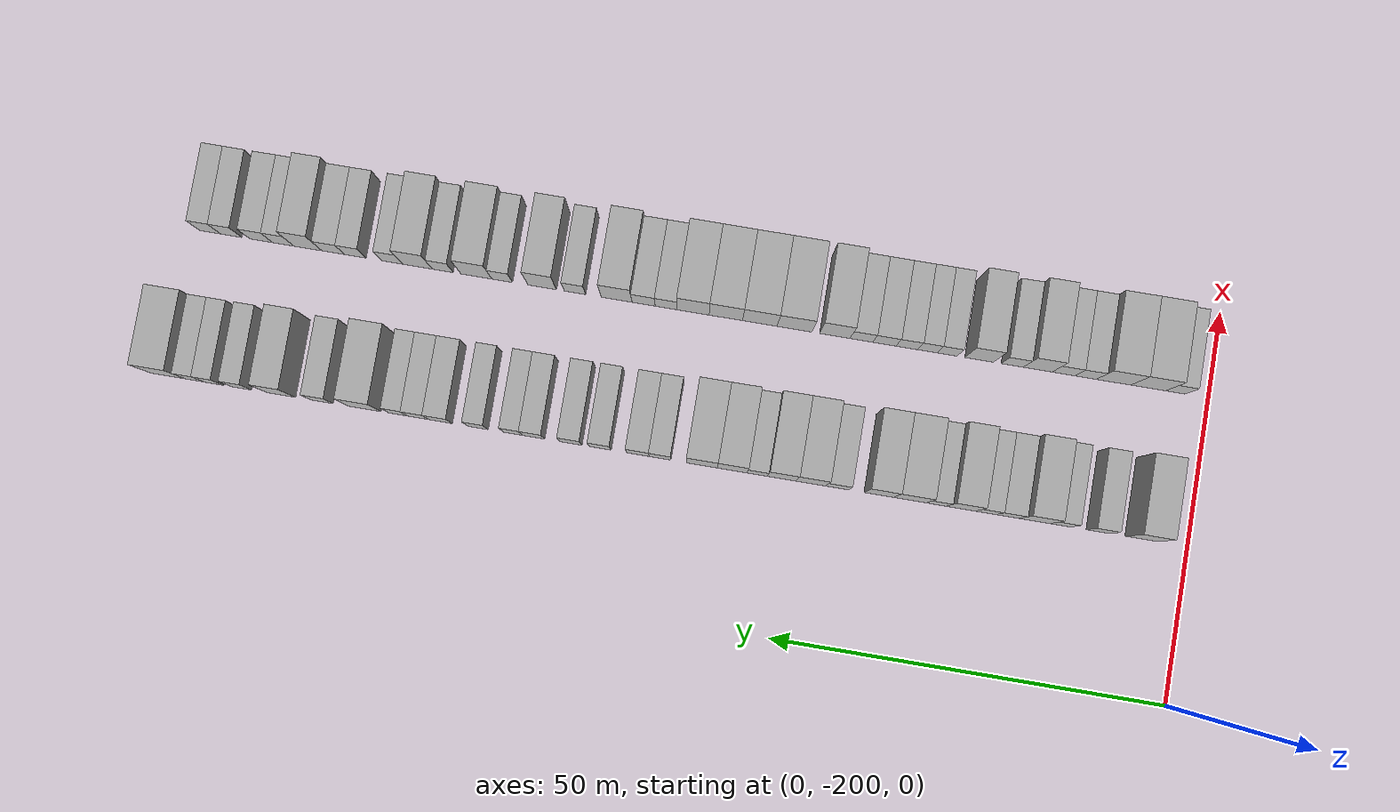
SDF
<sdf version="1.6">
 <world name="default">
  <model name="building_1">
   <static>1</static>
   <pose>25.0000 -194.0165 0 0.000000 0.000000 0.000000</pose>
   <link name="link">
    <pose>0 0 4.50 0 0 0</pose>
    <collision name="collision"><geometry><box><size>10.0000 3.9670 9.0000</size></box></geometry></collision>
    <visual name="visual">
     <cast_shadows>0</cast_shadows>
     <geometry><box><size>10.0000 3.9670 9.0000</size></box></geometry>
     <material>
      <script>
       <uri>model://HANNAS_wall/materials/scripts</uri>
       <uri>model://HANNAS_wall/materials/textures</uri>
       <name>vrc/HANNAS_wall</name>
      </script>
     </material>
    </visual>
   </link>
  </model>
  <model name="building_2">
   <static>1</static>
   <pose>25.0000 -188.5718 0 0.000000 0.000000 0.000000</pose>
   <link name="link">
    <pose>0 0 3.00 0 0 0</pose>
    <collision name="collision"><geometry><box><size>10.0000 2.9225 6.0000</size></box></geometry></collision>
    <visual name="visual">
     <cast_shadows>0</cast_shadows>
     <geometry><box><size>10.0000 2.9225 6.0000</size></box></geometry>
     <material>
      <script>
       <uri>model://HANNAS_wall/materials/scripts</uri>
       <uri>model://HANNAS_wall/materials/textures</uri>
       <name>vrc/HANNAS_wall</name>
      </script>
     </material>
    </visual>
   </link>
  </model>
  <model name="building_3">
   <static>1</static>
   <pose>25.0000 -183.7584 0 0.000000 0.000000 0.000000</pose>
   <link name="link">
    <pose>0 0 3.00 0 0 0</pose>
    <collision name="collision"><geometry><box><size>10.0000 2.7043 6.0000</size></box></geometry></collision>
    <visual name="visual">
     <cast_shadows>0</cast_shadows>
     <geometry><box><size>10.0000 2.7043 6.0000</size></box></geometry>
     <material>
      <script>
       <uri>model://HANNAS_wall/materials/scripts</uri>
       <uri>model://HANNAS_wall/materials/textures</uri>
       <name>vrc/HANNAS_wall</name>
      </script>
     </material>
    </visual>
   </link>
  </model>
  <model name="building_4">
   <static>1</static>
   <pose>25.0000 -180.4802 0 0.000000 0.000000 0.000000</pose>
   <link name="link">
    <pose>0 0 4.50 0 0 0</pose>
    <collision name="collision"><geometry><box><size>10.0000 3.8520 9.0000</size></box></geometry></collision>
    <visual name="visual">
     <cast_shadows>0</cast_shadows>
     <geometry><box><size>10.0000 3.8520 9.0000</size></box></geometry>
     <material>
      <script>
       <uri>model://HANNAS_wall/materials/scripts</uri>
       <uri>model://HANNAS_wall/materials/textures</uri>
       <name>vrc/HANNAS_wall</name>
      </script>
     </material>
    </visual>
   </link>
  </model>
  <model name="building_5">
   <static>1</static>
   <pose>25.0000 -177.1076 0 0.000000 0.000000 0.000000</pose>
   <link name="link">
    <pose>0 0 3.00 0 0 0</pose>
    <collision name="collision"><geometry><box><size>10.0000 2.8932 6.0000</size></box></geometry></collision>
    <visual name="visual">
     <cast_shadows>0</cast_shadows>
     <geometry><box><size>10.0000 2.8932 6.0000</size></box></geometry>
     <material>
      <script>
       <uri>model://HANNAS_wall/materials/scripts</uri>
       <uri>model://HANNAS_wall/materials/textures</uri>
       <name>vrc/HANNAS_wall</name>
      </script>
     </material>
    </visual>
   </link>
  </model>
  <model name="building_6">
   <static>1</static>
   <pose>25.0000 -174.3342 0 0.000000 0.000000 0.000000</pose>
   <link name="link">
    <pose>0 0 3.00 0 0 0</pose>
    <collision name="collision"><geometry><box><size>10.0000 2.6536 6.0000</size></box></geometry></collision>
    <visual name="visual">
     <cast_shadows>0</cast_shadows>
     <geometry><box><size>10.0000 2.6536 6.0000</size></box></geometry>
     <material>
      <script>
       <uri>model://HANNAS_wall/materials/scripts</uri>
       <uri>model://HANNAS_wall/materials/textures</uri>
       <name>vrc/HANNAS_wall</name>
      </script>
     </material>
    </visual>
   </link>
  </model>
  <model name="building_7">
   <static>1</static>
   <pose>25.0000 -171.1680 0 0.000000 0.000000 0.000000</pose>
   <link name="link">
    <pose>0 0 4.50 0 0 0</pose>
    <collision name="collision"><geometry><box><size>10.0000 3.6788 9.0000</size></box></geometry></collision>
    <visual name="visual">
     <cast_shadows>0</cast_shadows>
     <geometry><box><size>10.0000 3.6788 9.0000</size></box></geometry>
     <material>
      <script>
       <uri>model://HANNAS_wall/materials/scripts</uri>
       <uri>model://HANNAS_wall/materials/textures</uri>
       <name>vrc/HANNAS_wall</name>
      </script>
     </material>
    </visual>
   </link>
  </model>
  <model name="building_8">
   <static>1</static>
   <pose>25.0000 -168.0481 0 0.000000 0.000000 0.000000</pose>
   <link name="link">
    <pose>0 0 3.00 0 0 0</pose>
    <collision name="collision"><geometry><box><size>10.0000 2.5609 6.0000</size></box></geometry></collision>
    <visual name="visual">
     <cast_shadows>0</cast_shadows>
     <geometry><box><size>10.0000 2.5609 6.0000</size></box></geometry>
     <material>
      <script>
       <uri>model://HANNAS_wall/materials/scripts</uri>
       <uri>model://HANNAS_wall/materials/textures</uri>
       <name>vrc/HANNAS_wall</name>
      </script>
     </material>
    </visual>
   </link>
  </model>
  <model name="building_9">
   <static>1</static>
   <pose>25.0000 -164.6973 0 0.000000 0.000000 0.000000</pose>
   <link name="link">
    <pose>0 0 4.50 0 0 0</pose>
    <collision name="collision"><geometry><box><size>10.0000 4.1407 9.0000</size></box></geometry></collision>
    <visual name="visual">
     <cast_shadows>0</cast_shadows>
     <geometry><box><size>10.0000 4.1407 9.0000</size></box></geometry>
     <material>
      <script>
       <uri>model://HANNAS_wall/materials/scripts</uri>
       <uri>model://HANNAS_wall/materials/textures</uri>
       <name>vrc/HANNAS_wall</name>
      </script>
     </material>
    </visual>
   </link>
  </model>
  <model name="building_10">
   <static>1</static>
   <pose>25.0000 -160.7534 0 0.000000 0.000000 0.000000</pose>
   <link name="link">
    <pose>0 0 4.50 0 0 0</pose>
    <collision name="collision"><geometry><box><size>10.0000 3.7471 9.0000</size></box></geometry></collision>
    <visual name="visual">
     <cast_shadows>0</cast_shadows>
     <geometry><box><size>10.0000 3.7471 9.0000</size></box></geometry>
     <material>
      <script>
       <uri>model://HANNAS_wall/materials/scripts</uri>
       <uri>model://HANNAS_wall/materials/textures</uri>
       <name>vrc/HANNAS_wall</name>
      </script>
     </material>
    </visual>
   </link>
  </model>
  <model name="building_11">
   <static>1</static>
   <pose>25.0000 -155.4140 0 0.000000 0.000000 0.000000</pose>
   <link name="link">
    <pose>0 0 3.00 0 0 0</pose>
    <collision name="collision"><geometry><box><size>10.0000 2.9317 6.0000</size></box></geometry></collision>
    <visual name="visual">
     <cast_shadows>0</cast_shadows>
     <geometry><box><size>10.0000 2.9317 6.0000</size></box></geometry>
     <material>
      <script>
       <uri>model://HANNAS_wall/materials/scripts</uri>
       <uri>model://HANNAS_wall/materials/textures</uri>
       <name>vrc/HANNAS_wall</name>
      </script>
     </material>
    </visual>
   </link>
  </model>
  <model name="building_12">
   <static>1</static>
   <pose>25.0000 -152.0537 0 0.000000 0.000000 0.000000</pose>
   <link name="link">
    <pose>0 0 4.50 0 0 0</pose>
    <collision name="collision"><geometry><box><size>10.0000 3.7888 9.0000</size></box></geometry></collision>
    <visual name="visual">
     <cast_shadows>0</cast_shadows>
     <geometry><box><size>10.0000 3.7888 9.0000</size></box></geometry>
     <material>
      <script>
       <uri>model://HANNAS_wall/materials/scripts</uri>
       <uri>model://HANNAS_wall/materials/textures</uri>
       <name>vrc/HANNAS_wall</name>
      </script>
     </material>
    </visual>
   </link>
  </model>
  <model name="building_13">
   <static>1</static>
   <pose>25.0000 -148.3409 0 0.000000 0.000000 0.000000</pose>
   <link name="link">
    <pose>0 0 4.50 0 0 0</pose>
    <collision name="collision"><geometry><box><size>10.0000 3.6369 9.0000</size></box></geometry></collision>
    <visual name="visual">
     <cast_shadows>0</cast_shadows>
     <geometry><box><size>10.0000 3.6369 9.0000</size></box></geometry>
     <material>
      <script>
       <uri>model://HANNAS_wall/materials/scripts</uri>
       <uri>model://HANNAS_wall/materials/textures</uri>
       <name>vrc/HANNAS_wall</name>
      </script>
     </material>
    </visual>
   </link>
  </model>
  <model name="building_14">
   <static>1</static>
   <pose>25.0000 -145.2305 0 0.000000 0.000000 0.000000</pose>
   <link name="link">
    <pose>0 0 3.00 0 0 0</pose>
    <collision name="collision"><geometry><box><size>10.0000 2.5838 6.0000</size></box></geometry></collision>
    <visual name="visual">
     <cast_shadows>0</cast_shadows>
     <geometry><box><size>10.0000 2.5838 6.0000</size></box></geometry>
     <material>
      <script>
       <uri>model://HANNAS_wall/materials/scripts</uri>
       <uri>model://HANNAS_wall/materials/textures</uri>
       <name>vrc/HANNAS_wall</name>
      </script>
     </material>
    </visual>
   </link>
  </model>
  <model name="building_15">
   <static>1</static>
   <pose>25.0000 -142.0524 0 0.000000 0.000000 0.000000</pose>
   <link name="link">
    <pose>0 0 4.50 0 0 0</pose>
    <collision name="collision"><geometry><box><size>10.0000 3.7724 9.0000</size></box></geometry></collision>
    <visual name="visual">
     <cast_shadows>0</cast_shadows>
     <geometry><box><size>10.0000 3.7724 9.0000</size></box></geometry>
     <material>
      <script>
       <uri>model://HANNAS_wall/materials/scripts</uri>
       <uri>model://HANNAS_wall/materials/textures</uri>
       <name>vrc/HANNAS_wall</name>
      </script>
     </material>
    </visual>
   </link>
  </model>
  <model name="building_16">
   <static>1</static>
   <pose>25.0000 -138.2094 0 0.000000 0.000000 0.000000</pose>
   <link name="link">
    <pose>0 0 4.50 0 0 0</pose>
    <collision name="collision"><geometry><box><size>10.0000 3.9137 9.0000</size></box></geometry></collision>
    <visual name="visual">
     <cast_shadows>0</cast_shadows>
     <geometry><box><size>10.0000 3.9137 9.0000</size></box></geometry>
     <material>
      <script>
       <uri>model://HANNAS_wall/materials/scripts</uri>
       <uri>model://HANNAS_wall/materials/textures</uri>
       <name>vrc/HANNAS_wall</name>
      </script>
     </material>
    </visual>
   </link>
  </model>
  <model name="building_17">
   <static>1</static>
   <pose>25.0000 -132.8847 0 0.000000 0.000000 0.000000</pose>
   <link name="link">
    <pose>0 0 3.00 0 0 0</pose>
    <collision name="collision"><geometry><box><size>10.0000 2.7356 6.0000</size></box></geometry></collision>
    <visual name="visual">
     <cast_shadows>0</cast_shadows>
     <geometry><box><size>10.0000 2.7356 6.0000</size></box></geometry>
     <material>
      <script>
       <uri>model://HANNAS_wall/materials/scripts</uri>
       <uri>model://HANNAS_wall/materials/textures</uri>
       <name>vrc/HANNAS_wall</name>
      </script>
     </material>
    </visual>
   </link>
  </model>
  <model name="building_18">
   <static>1</static>
   <pose>25.0000 -130.0702 0 0.000000 0.000000 0.000000</pose>
   <link name="link">
    <pose>0 0 3.00 0 0 0</pose>
    <collision name="collision"><geometry><box><size>10.0000 2.8935 6.0000</size></box></geometry></collision>
    <visual name="visual">
     <cast_shadows>0</cast_shadows>
     <geometry><box><size>10.0000 2.8935 6.0000</size></box></geometry>
     <material>
      <script>
       <uri>model://HANNAS_wall/materials/scripts</uri>
       <uri>model://HANNAS_wall/materials/textures</uri>
       <name>vrc/HANNAS_wall</name>
      </script>
     </material>
    </visual>
   </link>
  </model>
  <model name="building_19">
   <static>1</static>
   <pose>25.0000 -125.2565 0 0.000000 0.000000 0.000000</pose>
   <link name="link">
    <pose>0 0 3.00 0 0 0</pose>
    <collision name="collision"><geometry><box><size>10.0000 2.7338 6.0000</size></box></geometry></collision>
    <visual name="visual">
     <cast_shadows>0</cast_shadows>
     <geometry><box><size>10.0000 2.7338 6.0000</size></box></geometry>
     <material>
      <script>
       <uri>model://HANNAS_wall/materials/scripts</uri>
       <uri>model://HANNAS_wall/materials/textures</uri>
       <name>vrc/HANNAS_wall</name>
      </script>
     </material>
    </visual>
   </link>
  </model>
  <model name="building_20">
   <static>1</static>
   <pose>25.0000 -121.5013 0 0.000000 0.000000 0.000000</pose>
   <link name="link">
    <pose>0 0 3.00 0 0 0</pose>
    <collision name="collision"><geometry><box><size>10.0000 2.7766 6.0000</size></box></geometry></collision>
    <visual name="visual">
     <cast_shadows>0</cast_shadows>
     <geometry><box><size>10.0000 2.7766 6.0000</size></box></geometry>
     <material>
      <script>
       <uri>model://HANNAS_wall/materials/scripts</uri>
       <uri>model://HANNAS_wall/materials/textures</uri>
       <name>vrc/HANNAS_wall</name>
      </script>
     </material>
    </visual>
   </link>
  </model>
  <model name="building_21">
   <static>1</static>
   <pose>25.0000 -116.7300 0 0.000000 0.000000 0.000000</pose>
   <link name="link">
    <pose>0 0 3.00 0 0 0</pose>
    <collision name="collision"><geometry><box><size>10.0000 2.7659 6.0000</size></box></geometry></collision>
    <visual name="visual">
     <cast_shadows>0</cast_shadows>
     <geometry><box><size>10.0000 2.7659 6.0000</size></box></geometry>
     <material>
      <script>
       <uri>model://HANNAS_wall/materials/scripts</uri>
       <uri>model://HANNAS_wall/materials/textures</uri>
       <name>vrc/HANNAS_wall</name>
      </script>
     </material>
    </visual>
   </link>
  </model>
  <model name="building_22">
   <static>1</static>
   <pose>25.0000 -114.1130 0 0.000000 0.000000 0.000000</pose>
   <link name="link">
    <pose>0 0 3.00 0 0 0</pose>
    <collision name="collision"><geometry><box><size>10.0000 2.4680 6.0000</size></box></geometry></collision>
    <visual name="visual">
     <cast_shadows>0</cast_shadows>
     <geometry><box><size>10.0000 2.4680 6.0000</size></box></geometry>
     <material>
      <script>
       <uri>model://HANNAS_wall/materials/scripts</uri>
       <uri>model://HANNAS_wall/materials/textures</uri>
       <name>vrc/HANNAS_wall</name>
      </script>
     </material>
    </visual>
   </link>
  </model>
  <model name="building_23">
   <static>1</static>
   <pose>25.0000 -109.5772 0 0.000000 0.000000 0.000000</pose>
   <link name="link">
    <pose>0 0 3.00 0 0 0</pose>
    <collision name="collision"><geometry><box><size>10.0000 2.6037 6.0000</size></box></geometry></collision>
    <visual name="visual">
     <cast_shadows>0</cast_shadows>
     <geometry><box><size>10.0000 2.6037 6.0000</size></box></geometry>
     <material>
      <script>
       <uri>model://HANNAS_wall/materials/scripts</uri>
       <uri>model://HANNAS_wall/materials/textures</uri>
       <name>vrc/HANNAS_wall</name>
      </script>
     </material>
    </visual>
   </link>
  </model>
  <model name="building_24">
   <static>1</static>
   <pose>25.0000 -104.7983 0 0.000000 0.000000 0.000000</pose>
   <link name="link">
    <pose>0 0 3.00 0 0 0</pose>
    <collision name="collision"><geometry><box><size>10.0000 2.9540 6.0000</size></box></geometry></collision>
    <visual name="visual">
     <cast_shadows>0</cast_shadows>
     <geometry><box><size>10.0000 2.9540 6.0000</size></box></geometry>
     <material>
      <script>
       <uri>model://HANNAS_wall/materials/scripts</uri>
       <uri>model://HANNAS_wall/materials/textures</uri>
       <name>vrc/HANNAS_wall</name>
      </script>
     </material>
    </visual>
   </link>
  </model>
  <model name="building_25">
   <static>1</static>
   <pose>25.0000 -101.9632 0 0.000000 0.000000 0.000000</pose>
   <link name="link">
    <pose>0 0 3.00 0 0 0</pose>
    <collision name="collision"><geometry><box><size>10.0000 2.7163 6.0000</size></box></geometry></collision>
    <visual name="visual">
     <cast_shadows>0</cast_shadows>
     <geometry><box><size>10.0000 2.7163 6.0000</size></box></geometry>
     <material>
      <script>
       <uri>model://HANNAS_wall/materials/scripts</uri>
       <uri>model://HANNAS_wall/materials/textures</uri>
       <name>vrc/HANNAS_wall</name>
      </script>
     </material>
    </visual>
   </link>
  </model>
  <model name="building_26">
   <static>1</static>
   <pose>25.0000 -99.3712 0 0.000000 0.000000 0.000000</pose>
   <link name="link">
    <pose>0 0 3.00 0 0 0</pose>
    <collision name="collision"><geometry><box><size>10.0000 2.4677 6.0000</size></box></geometry></collision>
    <visual name="visual">
     <cast_shadows>0</cast_shadows>
     <geometry><box><size>10.0000 2.4677 6.0000</size></box></geometry>
     <material>
      <script>
       <uri>model://HANNAS_wall/materials/scripts</uri>
       <uri>model://HANNAS_wall/materials/textures</uri>
       <name>vrc/HANNAS_wall</name>
      </script>
     </material>
    </visual>
   </link>
  </model>
  <model name="building_27">
   <static>1</static>
   <pose>25.0000 -95.0721 0 0.000000 0.000000 0.000000</pose>
   <link name="link">
    <pose>0 0 4.50 0 0 0</pose>
    <collision name="collision"><geometry><box><size>10.0000 4.1305 9.0000</size></box></geometry></collision>
    <visual name="visual">
     <cast_shadows>0</cast_shadows>
     <geometry><box><size>10.0000 4.1305 9.0000</size></box></geometry>
     <material>
      <script>
       <uri>model://HANNAS_wall/materials/scripts</uri>
       <uri>model://HANNAS_wall/materials/textures</uri>
       <name>vrc/HANNAS_wall</name>
      </script>
     </material>
    </visual>
   </link>
  </model>
  <model name="building_28">
   <static>1</static>
   <pose>25.0000 -89.5736 0 0.000000 0.000000 0.000000</pose>
   <link name="link">
    <pose>0 0 3.00 0 0 0</pose>
    <collision name="collision"><geometry><box><size>10.0000 2.8665 6.0000</size></box></geometry></collision>
    <visual name="visual">
     <cast_shadows>0</cast_shadows>
     <geometry><box><size>10.0000 2.8665 6.0000</size></box></geometry>
     <material>
      <script>
       <uri>model://HANNAS_wall/materials/scripts</uri>
       <uri>model://HANNAS_wall/materials/textures</uri>
       <name>vrc/HANNAS_wall</name>
      </script>
     </material>
    </visual>
   </link>
  </model>
  <model name="building_29">
   <static>1</static>
   <pose>25.0000 -84.3223 0 0.000000 0.000000 0.000000</pose>
   <link name="link">
    <pose>0 0 4.50 0 0 0</pose>
    <collision name="collision"><geometry><box><size>10.0000 3.6360 9.0000</size></box></geometry></collision>
    <visual name="visual">
     <cast_shadows>0</cast_shadows>
     <geometry><box><size>10.0000 3.6360 9.0000</size></box></geometry>
     <material>
      <script>
       <uri>model://HANNAS_wall/materials/scripts</uri>
       <uri>model://HANNAS_wall/materials/textures</uri>
       <name>vrc/HANNAS_wall</name>
      </script>
     </material>
    </visual>
   </link>
  </model>
  <model name="building_30">
   <static>1</static>
   <pose>25.0000 -79.1929 0 0.000000 0.000000 0.000000</pose>
   <link name="link">
    <pose>0 0 3.00 0 0 0</pose>
    <collision name="collision"><geometry><box><size>10.0000 2.6228 6.0000</size></box></geometry></collision>
    <visual name="visual">
     <cast_shadows>0</cast_shadows>
     <geometry><box><size>10.0000 2.6228 6.0000</size></box></geometry>
     <material>
      <script>
       <uri>model://HANNAS_wall/materials/scripts</uri>
       <uri>model://HANNAS_wall/materials/textures</uri>
       <name>vrc/HANNAS_wall</name>
      </script>
     </material>
    </visual>
   </link>
  </model>
  <model name="building_31">
   <static>1</static>
   <pose>25.0000 -75.6652 0 0.000000 0.000000 0.000000</pose>
   <link name="link">
    <pose>0 0 3.00 0 0 0</pose>
    <collision name="collision"><geometry><box><size>10.0000 2.4328 6.0000</size></box></geometry></collision>
    <visual name="visual">
     <cast_shadows>0</cast_shadows>
     <geometry><box><size>10.0000 2.4328 6.0000</size></box></geometry>
     <material>
      <script>
       <uri>model://HANNAS_wall/materials/scripts</uri>
       <uri>model://HANNAS_wall/materials/textures</uri>
       <name>vrc/HANNAS_wall</name>
      </script>
     </material>
    </visual>
   </link>
  </model>
  <model name="building_32">
   <static>1</static>
   <pose>25.0000 -73.2357 0 0.000000 0.000000 0.000000</pose>
   <link name="link">
    <pose>0 0 3.00 0 0 0</pose>
    <collision name="collision"><geometry><box><size>10.0000 2.4261 6.0000</size></box></geometry></collision>
    <visual name="visual">
     <cast_shadows>0</cast_shadows>
     <geometry><box><size>10.0000 2.4261 6.0000</size></box></geometry>
     <material>
      <script>
       <uri>model://HANNAS_wall/materials/scripts</uri>
       <uri>model://HANNAS_wall/materials/textures</uri>
       <name>vrc/HANNAS_wall</name>
      </script>
     </material>
    </visual>
   </link>
  </model>
  <model name="building_33">
   <static>1</static>
   <pose>25.0000 -69.8034 0 0.000000 0.000000 0.000000</pose>
   <link name="link">
    <pose>0 0 4.50 0 0 0</pose>
    <collision name="collision"><geometry><box><size>10.0000 4.4385 9.0000</size></box></geometry></collision>
    <visual name="visual">
     <cast_shadows>0</cast_shadows>
     <geometry><box><size>10.0000 4.4385 9.0000</size></box></geometry>
     <material>
      <script>
       <uri>model://HANNAS_wall/materials/scripts</uri>
       <uri>model://HANNAS_wall/materials/textures</uri>
       <name>vrc/HANNAS_wall</name>
      </script>
     </material>
    </visual>
   </link>
  </model>
  <model name="building_99">
   <static>1</static>
   <pose>44.0000 -195.7363 0 0.000000 0.000000 0.000000</pose>
   <link name="link">
    <pose>0 0 3.00 0 0 0</pose>
    <collision name="collision"><geometry><box><size>10.0000 2.5275 6.0000</size></box></geometry></collision>
    <visual name="visual">
     <cast_shadows>0</cast_shadows>
     <geometry><box><size>10.0000 2.5275 6.0000</size></box></geometry>
     <material>
      <script>
       <uri>model://HANNAS_wall/materials/scripts</uri>
       <uri>model://HANNAS_wall/materials/textures</uri>
       <name>vrc/HANNAS_wall</name>
      </script>
     </material>
    </visual>
   </link>
  </model>
  <model name="building_100">
   <static>1</static>
   <pose>44.0000 -192.2659 0 0.000000 0.000000 0.000000</pose>
   <link name="link">
    <pose>0 0 4.50 0 0 0</pose>
    <collision name="collision"><geometry><box><size>10.0000 4.4133 9.0000</size></box></geometry></collision>
    <visual name="visual">
     <cast_shadows>0</cast_shadows>
     <geometry><box><size>10.0000 4.4133 9.0000</size></box></geometry>
     <material>
      <script>
       <uri>model://HANNAS_wall/materials/scripts</uri>
       <uri>model://HANNAS_wall/materials/textures</uri>
       <name>vrc/HANNAS_wall</name>
      </script>
     </material>
    </visual>
   </link>
  </model>
  <model name="building_101">
   <static>1</static>
   <pose>44.0000 -187.8545 0 0.000000 0.000000 0.000000</pose>
   <link name="link">
    <pose>0 0 4.50 0 0 0</pose>
    <collision name="collision"><geometry><box><size>10.0000 4.4096 9.0000</size></box></geometry></collision>
    <visual name="visual">
     <cast_shadows>0</cast_shadows>
     <geometry><box><size>10.0000 4.4096 9.0000</size></box></geometry>
     <material>
      <script>
       <uri>model://HANNAS_wall/materials/scripts</uri>
       <uri>model://HANNAS_wall/materials/textures</uri>
       <name>vrc/HANNAS_wall</name>
      </script>
     </material>
    </visual>
   </link>
  </model>
  <model name="building_102">
   <static>1</static>
   <pose>44.0000 -184.2665 0 0.000000 0.000000 0.000000</pose>
   <link name="link">
    <pose>0 0 3.00 0 0 0</pose>
    <collision name="collision"><geometry><box><size>10.0000 2.7664 6.0000</size></box></geometry></collision>
    <visual name="visual">
     <cast_shadows>0</cast_shadows>
     <geometry><box><size>10.0000 2.7664 6.0000</size></box></geometry>
     <material>
      <script>
       <uri>model://HANNAS_wall/materials/scripts</uri>
       <uri>model://HANNAS_wall/materials/textures</uri>
       <name>vrc/HANNAS_wall</name>
      </script>
     </material>
    </visual>
   </link>
  </model>
  <model name="building_103">
   <static>1</static>
   <pose>44.0000 -181.4394 0 0.000000 0.000000 0.000000</pose>
   <link name="link">
    <pose>0 0 3.00 0 0 0</pose>
    <collision name="collision"><geometry><box><size>10.0000 2.8879 6.0000</size></box></geometry></collision>
    <visual name="visual">
     <cast_shadows>0</cast_shadows>
     <geometry><box><size>10.0000 2.8879 6.0000</size></box></geometry>
     <material>
      <script>
       <uri>model://HANNAS_wall/materials/scripts</uri>
       <uri>model://HANNAS_wall/materials/textures</uri>
       <name>vrc/HANNAS_wall</name>
      </script>
     </material>
    </visual>
   </link>
  </model>
  <model name="building_104">
   <static>1</static>
   <pose>44.0000 -178.1531 0 0.000000 0.000000 0.000000</pose>
   <link name="link">
    <pose>0 0 4.50 0 0 0</pose>
    <collision name="collision"><geometry><box><size>10.0000 3.6848 9.0000</size></box></geometry></collision>
    <visual name="visual">
     <cast_shadows>0</cast_shadows>
     <geometry><box><size>10.0000 3.6848 9.0000</size></box></geometry>
     <material>
      <script>
       <uri>model://HANNAS_wall/materials/scripts</uri>
       <uri>model://HANNAS_wall/materials/textures</uri>
       <name>vrc/HANNAS_wall</name>
      </script>
     </material>
    </visual>
   </link>
  </model>
  <model name="building_105">
   <static>1</static>
   <pose>44.0000 -174.8920 0 0.000000 0.000000 0.000000</pose>
   <link name="link">
    <pose>0 0 3.00 0 0 0</pose>
    <collision name="collision"><geometry><box><size>10.0000 2.8373 6.0000</size></box></geometry></collision>
    <visual name="visual">
     <cast_shadows>0</cast_shadows>
     <geometry><box><size>10.0000 2.8373 6.0000</size></box></geometry>
     <material>
      <script>
       <uri>model://HANNAS_wall/materials/scripts</uri>
       <uri>model://HANNAS_wall/materials/textures</uri>
       <name>vrc/HANNAS_wall</name>
      </script>
     </material>
    </visual>
   </link>
  </model>
  <model name="building_106">
   <static>1</static>
   <pose>44.0000 -170.6427 0 0.000000 0.000000 0.000000</pose>
   <link name="link">
    <pose>0 0 4.50 0 0 0</pose>
    <collision name="collision"><geometry><box><size>10.0000 3.6615 9.0000</size></box></geometry></collision>
    <visual name="visual">
     <cast_shadows>0</cast_shadows>
     <geometry><box><size>10.0000 3.6615 9.0000</size></box></geometry>
     <material>
      <script>
       <uri>model://HANNAS_wall/materials/scripts</uri>
       <uri>model://HANNAS_wall/materials/textures</uri>
       <name>vrc/HANNAS_wall</name>
      </script>
     </material>
    </visual>
   </link>
  </model>
  <model name="building_107">
   <static>1</static>
   <pose>44.0000 -166.5300 0 0.000000 0.000000 0.000000</pose>
   <link name="link">
    <pose>0 0 3.00 0 0 0</pose>
    <collision name="collision"><geometry><box><size>10.0000 2.5639 6.0000</size></box></geometry></collision>
    <visual name="visual">
     <cast_shadows>0</cast_shadows>
     <geometry><box><size>10.0000 2.5639 6.0000</size></box></geometry>
     <material>
      <script>
       <uri>model://HANNAS_wall/materials/scripts</uri>
       <uri>model://HANNAS_wall/materials/textures</uri>
       <name>vrc/HANNAS_wall</name>
      </script>
     </material>
    </visual>
   </link>
  </model>
  <model name="building_108">
   <static>1</static>
   <pose>44.0000 -163.9997 0 0.000000 0.000000 0.000000</pose>
   <link name="link">
    <pose>0 0 3.00 0 0 0</pose>
    <collision name="collision"><geometry><box><size>10.0000 2.4967 6.0000</size></box></geometry></collision>
    <visual name="visual">
     <cast_shadows>0</cast_shadows>
     <geometry><box><size>10.0000 2.4967 6.0000</size></box></geometry>
     <material>
      <script>
       <uri>model://HANNAS_wall/materials/scripts</uri>
       <uri>model://HANNAS_wall/materials/textures</uri>
       <name>vrc/HANNAS_wall</name>
      </script>
     </material>
    </visual>
   </link>
  </model>
  <model name="building_109">
   <static>1</static>
   <pose>44.0000 -161.3671 0 0.000000 0.000000 0.000000</pose>
   <link name="link">
    <pose>0 0 3.00 0 0 0</pose>
    <collision name="collision"><geometry><box><size>10.0000 2.7685 6.0000</size></box></geometry></collision>
    <visual name="visual">
     <cast_shadows>0</cast_shadows>
     <geometry><box><size>10.0000 2.7685 6.0000</size></box></geometry>
     <material>
      <script>
       <uri>model://HANNAS_wall/materials/scripts</uri>
       <uri>model://HANNAS_wall/materials/textures</uri>
       <name>vrc/HANNAS_wall</name>
      </script>
     </material>
    </visual>
   </link>
  </model>
  <model name="building_110">
   <static>1</static>
   <pose>44.0000 -158.4844 0 0.000000 0.000000 0.000000</pose>
   <link name="link">
    <pose>0 0 3.00 0 0 0</pose>
    <collision name="collision"><geometry><box><size>10.0000 2.9970 6.0000</size></box></geometry></collision>
    <visual name="visual">
     <cast_shadows>0</cast_shadows>
     <geometry><box><size>10.0000 2.9970 6.0000</size></box></geometry>
     <material>
      <script>
       <uri>model://HANNAS_wall/materials/scripts</uri>
       <uri>model://HANNAS_wall/materials/textures</uri>
       <name>vrc/HANNAS_wall</name>
      </script>
     </material>
    </visual>
   </link>
  </model>
  <model name="building_111">
   <static>1</static>
   <pose>44.0000 -155.5258 0 0.000000 0.000000 0.000000</pose>
   <link name="link">
    <pose>0 0 3.00 0 0 0</pose>
    <collision name="collision"><geometry><box><size>10.0000 2.9201 6.0000</size></box></geometry></collision>
    <visual name="visual">
     <cast_shadows>0</cast_shadows>
     <geometry><box><size>10.0000 2.9201 6.0000</size></box></geometry>
     <material>
      <script>
       <uri>model://HANNAS_wall/materials/scripts</uri>
       <uri>model://HANNAS_wall/materials/textures</uri>
       <name>vrc/HANNAS_wall</name>
      </script>
     </material>
    </visual>
   </link>
  </model>
  <model name="building_112">
   <static>1</static>
   <pose>44.0000 -152.1196 0 0.000000 0.000000 0.000000</pose>
   <link name="link">
    <pose>0 0 4.50 0 0 0</pose>
    <collision name="collision"><geometry><box><size>10.0000 3.8923 9.0000</size></box></geometry></collision>
    <visual name="visual">
     <cast_shadows>0</cast_shadows>
     <geometry><box><size>10.0000 3.8923 9.0000</size></box></geometry>
     <material>
      <script>
       <uri>model://HANNAS_wall/materials/scripts</uri>
       <uri>model://HANNAS_wall/materials/textures</uri>
       <name>vrc/HANNAS_wall</name>
      </script>
     </material>
    </visual>
   </link>
  </model>
  <model name="building_113">
   <static>1</static>
   <pose>44.0000 -146.9387 0 0.000000 0.000000 0.000000</pose>
   <link name="link">
    <pose>0 0 4.50 0 0 0</pose>
    <collision name="collision"><geometry><box><size>10.0000 4.4695 9.0000</size></box></geometry></collision>
    <visual name="visual">
     <cast_shadows>0</cast_shadows>
     <geometry><box><size>10.0000 4.4695 9.0000</size></box></geometry>
     <material>
      <script>
       <uri>model://HANNAS_wall/materials/scripts</uri>
       <uri>model://HANNAS_wall/materials/textures</uri>
       <name>vrc/HANNAS_wall</name>
      </script>
     </material>
    </visual>
   </link>
  </model>
  <model name="building_114">
   <static>1</static>
   <pose>44.0000 -142.4842 0 0.000000 0.000000 0.000000</pose>
   <link name="link">
    <pose>0 0 4.50 0 0 0</pose>
    <collision name="collision"><geometry><box><size>10.0000 4.4395 9.0000</size></box></geometry></collision>
    <visual name="visual">
     <cast_shadows>0</cast_shadows>
     <geometry><box><size>10.0000 4.4395 9.0000</size></box></geometry>
     <material>
      <script>
       <uri>model://HANNAS_wall/materials/scripts</uri>
       <uri>model://HANNAS_wall/materials/textures</uri>
       <name>vrc/HANNAS_wall</name>
      </script>
     </material>
    </visual>
   </link>
  </model>
  <model name="building_115">
   <static>1</static>
   <pose>44.0000 -138.1164 0 0.000000 0.000000 0.000000</pose>
   <link name="link">
    <pose>0 0 4.50 0 0 0</pose>
    <collision name="collision"><geometry><box><size>10.0000 4.2960 9.0000</size></box></geometry></collision>
    <visual name="visual">
     <cast_shadows>0</cast_shadows>
     <geometry><box><size>10.0000 4.2960 9.0000</size></box></geometry>
     <material>
      <script>
       <uri>model://HANNAS_wall/materials/scripts</uri>
       <uri>model://HANNAS_wall/materials/textures</uri>
       <name>vrc/HANNAS_wall</name>
      </script>
     </material>
    </visual>
   </link>
  </model>
  <model name="building_116">
   <static>1</static>
   <pose>44.0000 -133.9071 0 0.000000 0.000000 0.000000</pose>
   <link name="link">
    <pose>0 0 4.50 0 0 0</pose>
    <collision name="collision"><geometry><box><size>10.0000 4.1226 9.0000</size></box></geometry></collision>
    <visual name="visual">
     <cast_shadows>0</cast_shadows>
     <geometry><box><size>10.0000 4.1226 9.0000</size></box></geometry>
     <material>
      <script>
       <uri>model://HANNAS_wall/materials/scripts</uri>
       <uri>model://HANNAS_wall/materials/textures</uri>
       <name>vrc/HANNAS_wall</name>
      </script>
     </material>
    </visual>
   </link>
  </model>
  <model name="building_117">
   <static>1</static>
   <pose>44.0000 -130.4311 0 0.000000 0.000000 0.000000</pose>
   <link name="link">
    <pose>0 0 3.00 0 0 0</pose>
    <collision name="collision"><geometry><box><size>10.0000 2.8295 6.0000</size></box></geometry></collision>
    <visual name="visual">
     <cast_shadows>0</cast_shadows>
     <geometry><box><size>10.0000 2.8295 6.0000</size></box></geometry>
     <material>
      <script>
       <uri>model://HANNAS_wall/materials/scripts</uri>
       <uri>model://HANNAS_wall/materials/textures</uri>
       <name>vrc/HANNAS_wall</name>
      </script>
     </material>
    </visual>
   </link>
  </model>
  <model name="building_118">
   <static>1</static>
   <pose>44.0000 -127.5306 0 0.000000 0.000000 0.000000</pose>
   <link name="link">
    <pose>0 0 3.00 0 0 0</pose>
    <collision name="collision"><geometry><box><size>10.0000 2.9713 6.0000</size></box></geometry></collision>
    <visual name="visual">
     <cast_shadows>0</cast_shadows>
     <geometry><box><size>10.0000 2.9713 6.0000</size></box></geometry>
     <material>
      <script>
       <uri>model://HANNAS_wall/materials/scripts</uri>
       <uri>model://HANNAS_wall/materials/textures</uri>
       <name>vrc/HANNAS_wall</name>
      </script>
     </material>
    </visual>
   </link>
  </model>
  <model name="building_119">
   <static>1</static>
   <pose>44.0000 -124.0559 0 0.000000 0.000000 0.000000</pose>
   <link name="link">
    <pose>0 0 4.50 0 0 0</pose>
    <collision name="collision"><geometry><box><size>10.0000 3.9781 9.0000</size></box></geometry></collision>
    <visual name="visual">
     <cast_shadows>0</cast_shadows>
     <geometry><box><size>10.0000 3.9781 9.0000</size></box></geometry>
     <material>
      <script>
       <uri>model://HANNAS_wall/materials/scripts</uri>
       <uri>model://HANNAS_wall/materials/textures</uri>
       <name>vrc/HANNAS_wall</name>
      </script>
     </material>
    </visual>
   </link>
  </model>
  <model name="building_120">
   <static>1</static>
   <pose>44.0000 -118.6877 0 0.000000 0.000000 0.000000</pose>
   <link name="link">
    <pose>0 0 3.00 0 0 0</pose>
    <collision name="collision"><geometry><box><size>10.0000 2.7583 6.0000</size></box></geometry></collision>
    <visual name="visual">
     <cast_shadows>0</cast_shadows>
     <geometry><box><size>10.0000 2.7583 6.0000</size></box></geometry>
     <material>
      <script>
       <uri>model://HANNAS_wall/materials/scripts</uri>
       <uri>model://HANNAS_wall/materials/textures</uri>
       <name>vrc/HANNAS_wall</name>
      </script>
     </material>
    </visual>
   </link>
  </model>
  <model name="building_121">
   <static>1</static>
   <pose>44.0000 -114.4644 0 0.000000 0.000000 0.000000</pose>
   <link name="link">
    <pose>0 0 4.50 0 0 0</pose>
    <collision name="collision"><geometry><box><size>10.0000 3.6882 9.0000</size></box></geometry></collision>
    <visual name="visual">
     <cast_shadows>0</cast_shadows>
     <geometry><box><size>10.0000 3.6882 9.0000</size></box></geometry>
     <material>
      <script>
       <uri>model://HANNAS_wall/materials/scripts</uri>
       <uri>model://HANNAS_wall/materials/textures</uri>
       <name>vrc/HANNAS_wall</name>
      </script>
     </material>
    </visual>
   </link>
  </model>
  <model name="building_122">
   <static>1</static>
   <pose>44.0000 -109.2843 0 0.000000 0.000000 0.000000</pose>
   <link name="link">
    <pose>0 0 3.00 0 0 0</pose>
    <collision name="collision"><geometry><box><size>10.0000 2.6721 6.0000</size></box></geometry></collision>
    <visual name="visual">
     <cast_shadows>0</cast_shadows>
     <geometry><box><size>10.0000 2.6721 6.0000</size></box></geometry>
     <material>
      <script>
       <uri>model://HANNAS_wall/materials/scripts</uri>
       <uri>model://HANNAS_wall/materials/textures</uri>
       <name>vrc/HANNAS_wall</name>
      </script>
     </material>
    </visual>
   </link>
  </model>
  <model name="building_123">
   <static>1</static>
   <pose>44.0000 -105.9489 0 0.000000 0.000000 0.000000</pose>
   <link name="link">
    <pose>0 0 4.50 0 0 0</pose>
    <collision name="collision"><geometry><box><size>10.0000 3.9986 9.0000</size></box></geometry></collision>
    <visual name="visual">
     <cast_shadows>0</cast_shadows>
     <geometry><box><size>10.0000 3.9986 9.0000</size></box></geometry>
     <material>
      <script>
       <uri>model://HANNAS_wall/materials/scripts</uri>
       <uri>model://HANNAS_wall/materials/textures</uri>
       <name>vrc/HANNAS_wall</name>
      </script>
     </material>
    </visual>
   </link>
  </model>
  <model name="building_124">
   <static>1</static>
   <pose>44.0000 -101.6007 0 0.000000 0.000000 0.000000</pose>
   <link name="link">
    <pose>0 0 3.00 0 0 0</pose>
    <collision name="collision"><geometry><box><size>10.0000 2.6978 6.0000</size></box></geometry></collision>
    <visual name="visual">
     <cast_shadows>0</cast_shadows>
     <geometry><box><size>10.0000 2.6978 6.0000</size></box></geometry>
     <material>
      <script>
       <uri>model://HANNAS_wall/materials/scripts</uri>
       <uri>model://HANNAS_wall/materials/textures</uri>
       <name>vrc/HANNAS_wall</name>
      </script>
     </material>
    </visual>
   </link>
  </model>
  <model name="building_125">
   <static>1</static>
   <pose>44.0000 -98.3347 0 0.000000 0.000000 0.000000</pose>
   <link name="link">
    <pose>0 0 4.50 0 0 0</pose>
    <collision name="collision"><geometry><box><size>10.0000 3.8341 9.0000</size></box></geometry></collision>
    <visual name="visual">
     <cast_shadows>0</cast_shadows>
     <geometry><box><size>10.0000 3.8341 9.0000</size></box></geometry>
     <material>
      <script>
       <uri>model://HANNAS_wall/materials/scripts</uri>
       <uri>model://HANNAS_wall/materials/textures</uri>
       <name>vrc/HANNAS_wall</name>
      </script>
     </material>
    </visual>
   </link>
  </model>
  <model name="building_126">
   <static>1</static>
   <pose>44.0000 -95.0498 0 0.000000 0.000000 0.000000</pose>
   <link name="link">
    <pose>0 0 3.00 0 0 0</pose>
    <collision name="collision"><geometry><box><size>10.0000 2.7358 6.0000</size></box></geometry></collision>
    <visual name="visual">
     <cast_shadows>0</cast_shadows>
     <geometry><box><size>10.0000 2.7358 6.0000</size></box></geometry>
     <material>
      <script>
       <uri>model://HANNAS_wall/materials/scripts</uri>
       <uri>model://HANNAS_wall/materials/textures</uri>
       <name>vrc/HANNAS_wall</name>
      </script>
     </material>
    </visual>
   </link>
  </model>
  <model name="building_127">
   <static>1</static>
   <pose>44.0000 -90.2970 0 0.000000 0.000000 0.000000</pose>
   <link name="link">
    <pose>0 0 3.00 0 0 0</pose>
    <collision name="collision"><geometry><box><size>10.0000 2.7697 6.0000</size></box></geometry></collision>
    <visual name="visual">
     <cast_shadows>0</cast_shadows>
     <geometry><box><size>10.0000 2.7697 6.0000</size></box></geometry>
     <material>
      <script>
       <uri>model://HANNAS_wall/materials/scripts</uri>
       <uri>model://HANNAS_wall/materials/textures</uri>
       <name>vrc/HANNAS_wall</name>
      </script>
     </material>
    </visual>
   </link>
  </model>
  <model name="building_128">
   <static>1</static>
   <pose>44.0000 -87.4222 0 0.000000 0.000000 0.000000</pose>
   <link name="link">
    <pose>0 0 3.00 0 0 0</pose>
    <collision name="collision"><geometry><box><size>10.0000 2.9799 6.0000</size></box></geometry></collision>
    <visual name="visual">
     <cast_shadows>0</cast_shadows>
     <geometry><box><size>10.0000 2.9799 6.0000</size></box></geometry>
     <material>
      <script>
       <uri>model://HANNAS_wall/materials/scripts</uri>
       <uri>model://HANNAS_wall/materials/textures</uri>
       <name>vrc/HANNAS_wall</name>
      </script>
     </material>
    </visual>
   </link>
  </model>
  <model name="building_129">
   <static>1</static>
   <pose>44.0000 -84.1255 0 0.000000 0.000000 0.000000</pose>
   <link name="link">
    <pose>0 0 4.50 0 0 0</pose>
    <collision name="collision"><geometry><box><size>10.0000 3.6137 9.0000</size></box></geometry></collision>
    <visual name="visual">
     <cast_shadows>0</cast_shadows>
     <geometry><box><size>10.0000 3.6137 9.0000</size></box></geometry>
     <material>
      <script>
       <uri>model://HANNAS_wall/materials/scripts</uri>
       <uri>model://HANNAS_wall/materials/textures</uri>
       <name>vrc/HANNAS_wall</name>
      </script>
     </material>
    </visual>
   </link>
  </model>
  <model name="building_130">
   <static>1</static>
   <pose>44.0000 -80.9319 0 0.000000 0.000000 0.000000</pose>
   <link name="link">
    <pose>0 0 3.00 0 0 0</pose>
    <collision name="collision"><geometry><box><size>10.0000 2.7735 6.0000</size></box></geometry></collision>
    <visual name="visual">
     <cast_shadows>0</cast_shadows>
     <geometry><box><size>10.0000 2.7735 6.0000</size></box></geometry>
     <material>
      <script>
       <uri>model://HANNAS_wall/materials/scripts</uri>
       <uri>model://HANNAS_wall/materials/textures</uri>
       <name>vrc/HANNAS_wall</name>
      </script>
     </material>
    </visual>
   </link>
  </model>
  <model name="building_131">
   <static>1</static>
   <pose>44.0000 -78.0602 0 0.000000 0.000000 0.000000</pose>
   <link name="link">
    <pose>0 0 3.00 0 0 0</pose>
    <collision name="collision"><geometry><box><size>10.0000 2.9699 6.0000</size></box></geometry></collision>
    <visual name="visual">
     <cast_shadows>0</cast_shadows>
     <geometry><box><size>10.0000 2.9699 6.0000</size></box></geometry>
     <material>
      <script>
       <uri>model://HANNAS_wall/materials/scripts</uri>
       <uri>model://HANNAS_wall/materials/textures</uri>
       <name>vrc/HANNAS_wall</name>
      </script>
     </material>
    </visual>
   </link>
  </model>
  <model name="building_132">
   <static>1</static>
   <pose>44.0000 -74.2007 0 0.000000 0.000000 0.000000</pose>
   <link name="link">
    <pose>0 0 3.00 0 0 0</pose>
    <collision name="collision"><geometry><box><size>10.0000 2.7491 6.0000</size></box></geometry></collision>
    <visual name="visual">
     <cast_shadows>0</cast_shadows>
     <geometry><box><size>10.0000 2.7491 6.0000</size></box></geometry>
     <material>
      <script>
       <uri>model://HANNAS_wall/materials/scripts</uri>
       <uri>model://HANNAS_wall/materials/textures</uri>
       <name>vrc/HANNAS_wall</name>
      </script>
     </material>
    </visual>
   </link>
  </model>
  <model name="building_133">
   <static>1</static>
   <pose>44.0000 -71.4696 0 0.000000 0.000000 0.000000</pose>
   <link name="link">
    <pose>0 0 3.00 0 0 0</pose>
    <collision name="collision"><geometry><box><size>10.0000 2.7130 6.0000</size></box></geometry></collision>
    <visual name="visual">
     <cast_shadows>0</cast_shadows>
     <geometry><box><size>10.0000 2.7130 6.0000</size></box></geometry>
     <material>
      <script>
       <uri>model://HANNAS_wall/materials/scripts</uri>
       <uri>model://HANNAS_wall/materials/textures</uri>
       <name>vrc/HANNAS_wall</name>
      </script>
     </material>
    </visual>
   </link>
  </model>
 </world>
</sdf>
